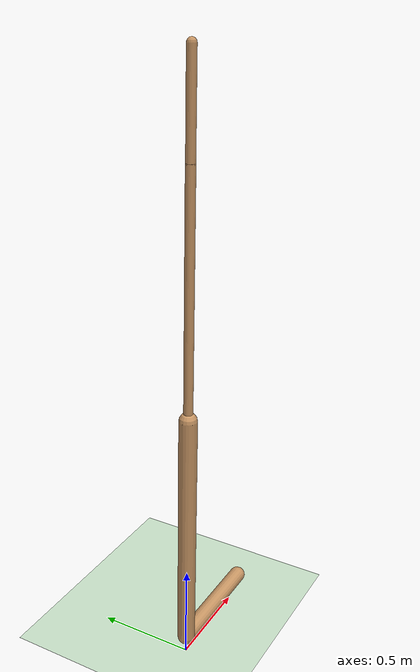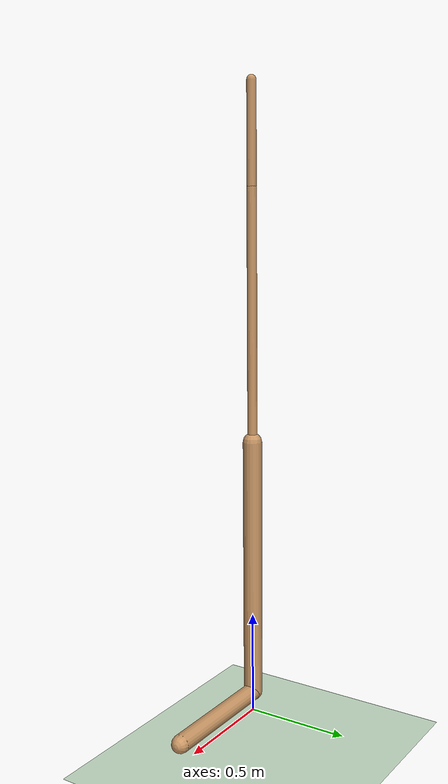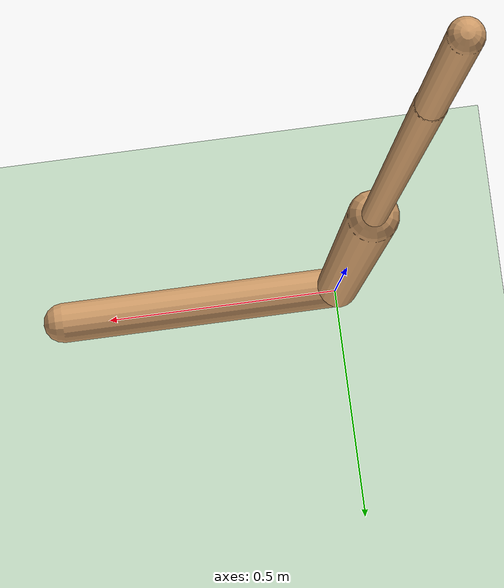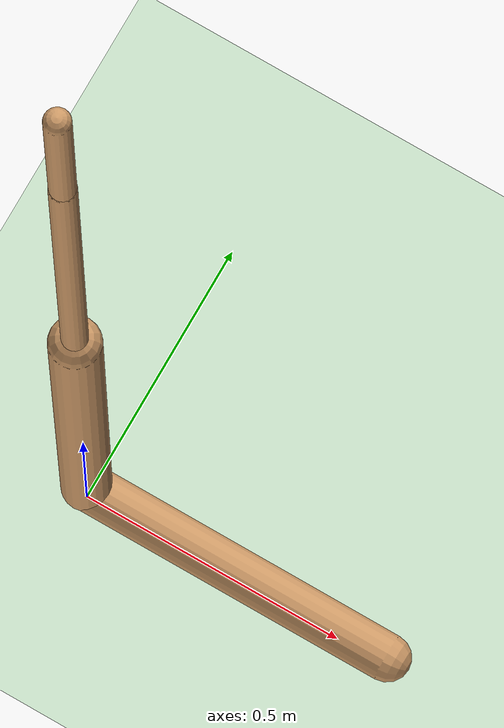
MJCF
<mujoco model="walker2d">
  <compiler angle="degree" inertiafromgeom="true" />
  <default>
    <joint armature="0.01" damping=".1" limited="true" />
    <geom conaffinity="0" condim="3" contype="1" density="1000" friction=".7 .1 .1" rgba="0.8 0.6 .4 1" />
  </default>
  <option integrator="RK4" timestep="0.002" />
  <worldbody>
    <light cutoff="100" diffuse="1 1 1" dir="-0 0 -1.3" directional="true" exponent="1" pos="0 0 1.3" specular=".1 .1 .1" />
    <geom conaffinity="1" condim="3" name="floor" pos="0 0 0" rgba="0.8 0.9 0.8 1" size="40 40 40" type="plane" material="MatPlane" />
    <body name="torso" pos="0 0 2.7601840257644654">
      <camera name="track" mode="trackcom" pos="0 -5 -1.25" xyaxes="1 0 0 0 0 1" />
      <joint armature="0" axis="1 0 0" damping="0" limited="false" name="rootx" pos="0 0 -1.25" stiffness="0" type="slide" />
      <joint armature="0" axis="0 0 1" damping="0" limited="false" name="rootz" pos="0 0 -1.25" ref="1.25" stiffness="0" type="slide" />
      <joint armature="0" axis="0 1 0" damping="0" limited="false" name="rooty" pos="0 0 0" stiffness="0" type="hinge" />
      <geom friction="0.9" name="torso_geom" size="0.021708078682422638 0.2285914421081543" type="capsule" />
      <body name="thigh" pos="0 0 -0.2285914421081543">
        <joint axis="0 -1 0" name="thigh_joint" pos="0 0 0" range="-150 0" type="hinge" />
        <site name="torso_thigh_site" pos="0 0 0" size="0.01" type="sphere" rgba="1 0 0 0.5" />
        <geom friction="0.9" pos="0 0 -0.5826795101165771" name="thigh_geom" size="0.022642822936177254 0.5826795101165771" type="capsule" />
        <body name="leg" pos="0 0 -1.7984758019447327">
          <joint axis="0 -1 0" name="leg_joint" pos="0 0 0.6331167817115784" range="-150 0" type="hinge" />
          <site name="thigh_leg_site" pos="0 0 0.25" size="0.01" type="sphere" rgba="1 0 0 0.5" />
          <geom friction="0.9" name="leg_geom" size="0.04491608589887619 0.6331167817115784" type="capsule" />
          <body name="foot" pos="0.5976772308349609 0 -0.7331167817115783">
            <joint axis="0 -1 0" name="foot_joint" pos="-0.5976772308349609 0 0.1" range="-45 45" type="hinge" />
            <site name="leg_foot_site" pos="-0.2 0 0.1" size="0.01" type="sphere" rgba="1 0 0 0.5" />
            <geom friction="0.9" pos="-0.29883861541748047 0 0.1" quat="0.70710678118654757 0 -0.70710678118654746 0" name="foot_geom" size="0.04301436245441437 0.29883861541748047" type="capsule" />
          </body>
        </body>
      </body>

      <body name="thigh_left" pos="0 0 -0.2285914421081543">
        <joint axis="0 -1 0" name="thigh_left_joint" pos="0 0 0" range="-150 0" type="hinge" />
        <site name="torso_thigh_left_site" pos="0 0 0" size="0.01" type="sphere" rgba="1 0 0 0.5" />
        <geom friction="0.9" name="thigh_left_geom" rgba=".7 .3 .6 1" size="0.022642822936177254 0.5826795101165771" pos="0 0 -0.5826795101165771" type="capsule" />
        <body name="leg_left" pos="0 0 -1.7984758019447327">
          <joint axis="0 -1 0" name="leg_left_joint" pos="0 0 0.6331167817115784" range="-150 0" type="hinge" />
          <site name="thigh_leg_left_site" pos="0 0 0.25" size="0.01" type="sphere" rgba="1 0 0 0.5" />
          <geom friction="0.9" name="leg_left_geom" rgba=".7 .3 .6 1" size="0.04491608589887619 0.6331167817115784" type="capsule" />
          <body name="foot_left" pos="0.5976772308349609 0 -0.7331167817115783">
            <joint axis="0 -1 0" name="foot_left_joint" pos="-0.5976772308349609 0 0.1" range="-45 45" type="hinge" />
            <site name="leg_foot_left_site" pos="-0.2 0 0.1" size="0.01" type="sphere" rgba="1 0 0 0.5" />
            <geom friction="1.9" name="foot_left_geom" rgba=".7 .3 .6 1" size="0.04301436245441437 0.29883861541748047" pos="-0.29883861541748047 0 0.1" type="capsule" quat="0.70710678118654757 0 -0.70710678118654746 0" />
          </body>
        </body>
      </body>
    </body>
  </worldbody>
  <actuator>

    <motor ctrllimited="true" ctrlrange="-1.0 1.0" gear="53.10902891606795" joint="thigh_joint" />
    <motor ctrllimited="true" ctrlrange="-1.0 1.0" gear="319.3211181995446" joint="leg_joint" />
    <motor ctrllimited="true" ctrlrange="-1.0 1.0" gear="153.5893828796172" joint="foot_joint" />
    <motor ctrllimited="true" ctrlrange="-1.0 1.0" gear="53.10902891606795" joint="thigh_left_joint" />
    <motor ctrllimited="true" ctrlrange="-1.0 1.0" gear="319.3211181995446" joint="leg_left_joint" />
    <motor ctrllimited="true" ctrlrange="-1.0 1.0" gear="153.5893828796172" joint="foot_left_joint" />

  </actuator>
    <asset>
        <texture type="skybox" builtin="gradient" rgb1=".4 .5 .6" rgb2="0 0 0" width="100" height="100" />
        <texture builtin="flat" height="1278" mark="cross" markrgb="1 1 1" name="texgeom" random="0.01" rgb1="0.8 0.6 0.4" rgb2="0.8 0.6 0.4" type="cube" width="127" />
        <texture builtin="checker" height="100" name="texplane" rgb1="0 0 0" rgb2="0.8 0.8 0.8" type="2d" width="100" />
        <material name="MatPlane" reflectance="0.5" shininess="1" specular="1" texrepeat="60 60" texture="texplane" />
        <material name="geom" texture="texgeom" texuniform="true" />
    </asset>

  <sensor>
    <force site="torso_thigh_site" name="torso_thigh_sensor" />
    <force site="thigh_leg_site" name="thigh_leg_sensor" />
    <force site="leg_foot_site" name="leg_foot_sensor" />
    <force site="torso_thigh_left_site" name="torso_thigh_left_sensor" />
    <force site="thigh_leg_left_site" name="thigh_leg_left_sensor" />
    <force site="leg_foot_left_site" name="leg_foot_left_sensor" />
  </sensor>
</mujoco>
